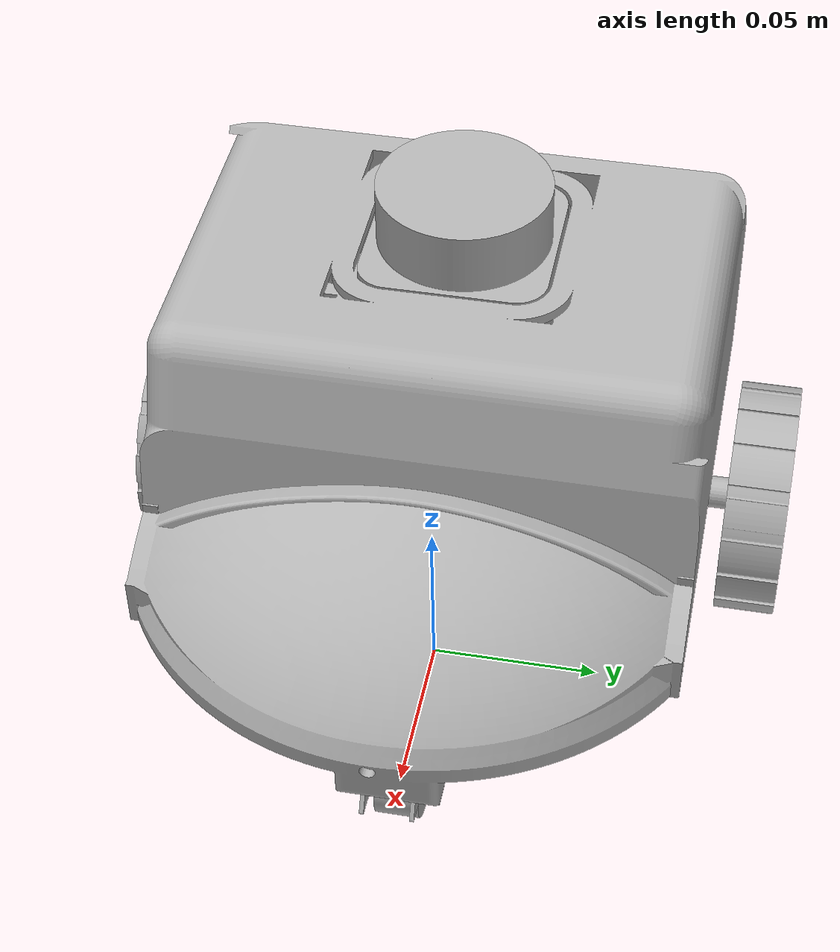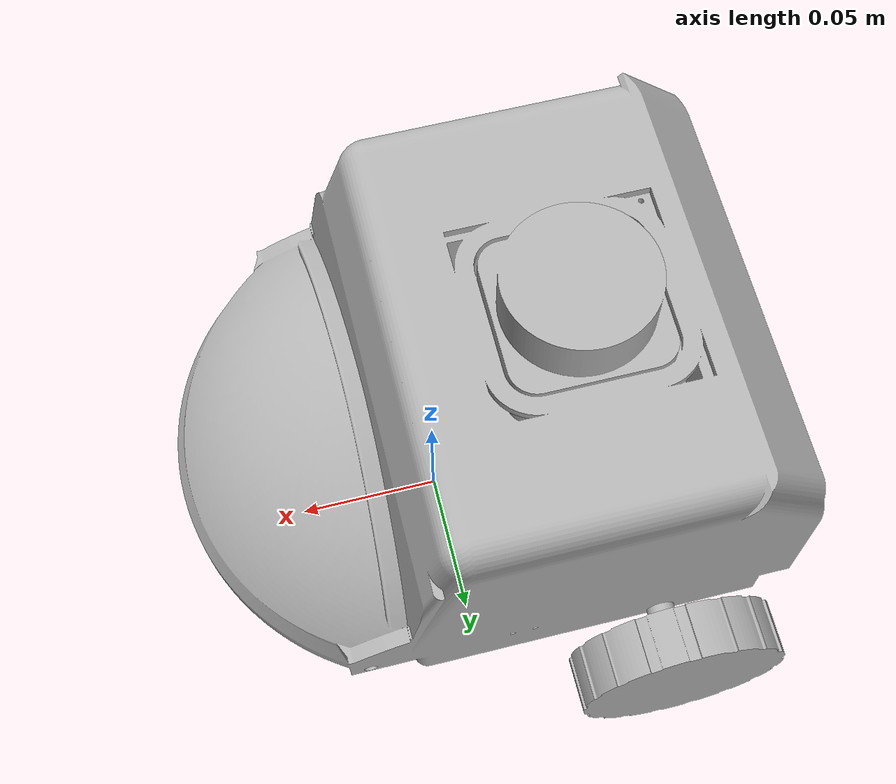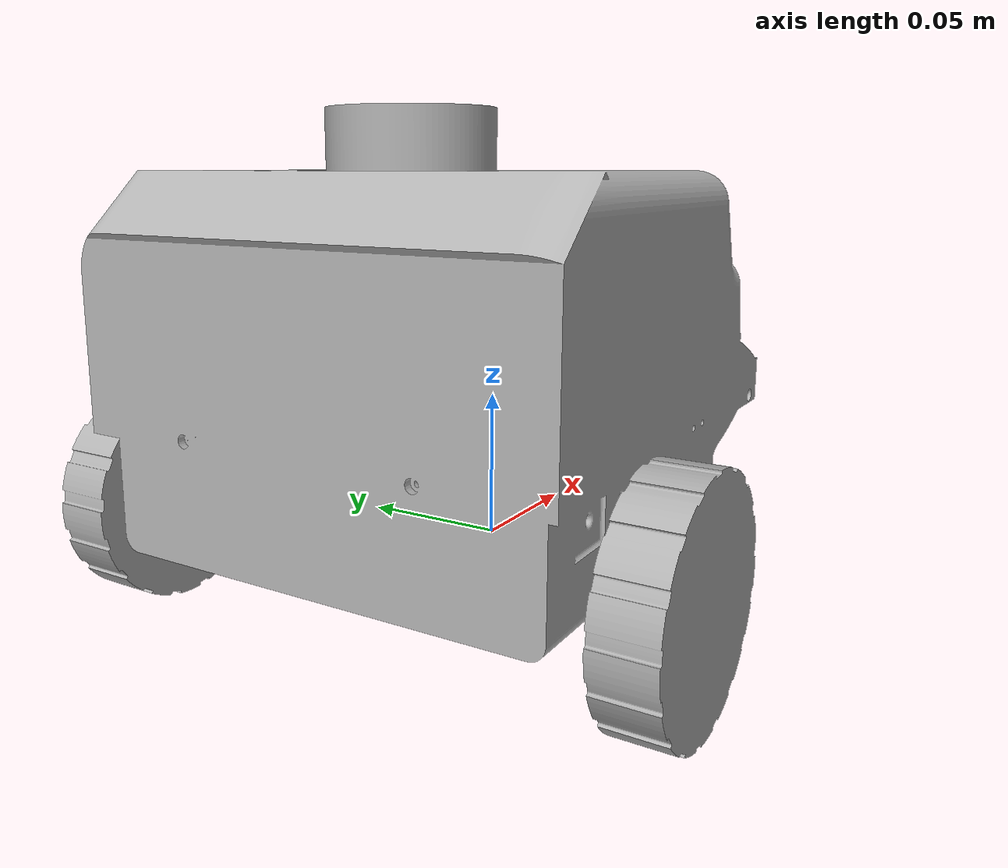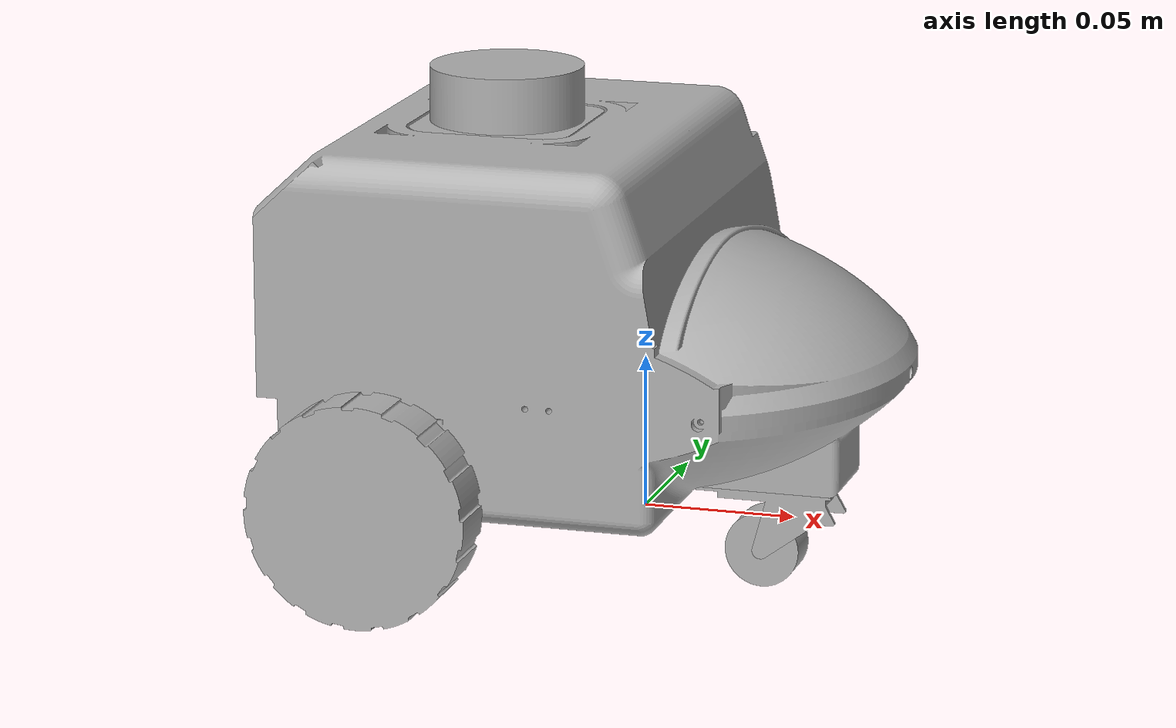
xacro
<?xml version="1.0" ?>
<robot name="relayrobot" xmlns:xacro="http://www.ros.org/wiki/xacro">

<xacro:include filename="$(find relayrobot_description)/urdf/materials.xacro" />
<xacro:include filename="$(find relayrobot_description)/urdf/relayrobot.trans" />
<xacro:include filename="$(find relayrobot_description)/urdf/relayrobot.gazebo" />

<link name="base_link">
  <inertial>
    <origin xyz="-0.02849873201115896 0.0010074794741378814 0.059470655413059396" rpy="0 0 0"/>
    <mass value="1.5"/>
    <inertia ixx="0.015961" iyy="0.020269" izz="0.023585" ixy="0.000105" iyz="-1.3e-05" ixz="0.00148"/>
  </inertial>
  <visual>
    <origin xyz="0 0 0" rpy="0 0 0"/>
    <geometry>
      <mesh filename="file://$(find relayrobot_description)/meshes/base_link.stl" scale="0.001 0.001 0.001"/>
    </geometry>
    <material name="silver"/>
  </visual>
  <collision>
    <origin xyz="0 0 0" rpy="0 0 0"/>
    <geometry>
      <mesh filename="file://$(find relayrobot_description)/meshes/base_link.stl" scale="0.001 0.001 0.001"/>
    </geometry>
  </collision>
</link>

<link name="left_wheel_v1_1">
  <inertial>
    <origin xyz="0.00010310967788917935 0.009300000000000141 0.00014263087704373054" rpy="0 0 0"/>
    <mass value="0.584454388782356"/>
    <inertia ixx="0.000203" iyy="0.000373" izz="0.000203" ixy="-0.0" iyz="0.0" ixz="-0.0"/>
  </inertial>
  <visual>
    <origin xyz="0.065 -0.0825 -0.019" rpy="0 0 0"/>
    <geometry>
      <mesh filename="file://$(find relayrobot_description)/meshes/left_wheel_v1_1.stl" scale="0.001 0.001 0.001"/>
    </geometry>
    <material name="silver"/>
  </visual>
  <collision>
    <origin xyz="0.065 -0.0825 -0.019" rpy="0 0 0"/>
    <geometry>
      <mesh filename="file://$(find relayrobot_description)/meshes/left_wheel_v1_1.stl" scale="0.001 0.001 0.001"/>
    </geometry>
  </collision>
</link>

<link name="right_wheel_v1_1">
  <inertial>
    <origin xyz="-9.685606761067334e-10 -0.00929999999999985 -1.4899380340605006e-11" rpy="0 0 0"/>
    <mass value="0.584454388782356"/>
    <inertia ixx="0.000203" iyy="0.000373" izz="0.000203" ixy="0.0" iyz="0.0" ixz="0.0"/>
  </inertial>
  <visual>
    <origin xyz="0.065 0.0825 -0.019" rpy="0 0 0"/>
    <geometry>
      <mesh filename="file://$(find relayrobot_description)/meshes/right_wheel_v1_1.stl" scale="0.001 0.001 0.001"/>
    </geometry>
    <material name="silver"/>
  </visual>
  <collision>
    <origin xyz="0.065 0.0825 -0.019" rpy="0 0 0"/>
    <geometry>
      <mesh filename="file://$(find relayrobot_description)/meshes/right_wheel_v1_1.stl" scale="0.001 0.001 0.001"/>
    </geometry>
  </collision>
</link>

<link name="lidar_v1_1">
  <inertial>
    <origin xyz="1.9380429697180013e-07 -0.001999947791913167 -0.0011862981259600225" rpy="0 0 0"/>
    <mass value="0.78745669696203"/>
    <inertia ixx="0.000267" iyy="0.000267" izz="0.000322" ixy="0.0" iyz="0.0" ixz="0.0"/>
  </inertial>
  <visual>
    <origin xyz="0.046963 -0.002846 -0.1223" rpy="0 0 0"/>
    <geometry>
      <mesh filename="file://$(find relayrobot_description)/meshes/lidar_v1_1.stl" scale="0.001 0.001 0.001"/>
    </geometry>
    <material name="silver"/>
  </visual>
  <collision>
    <origin xyz="0.046963 -0.002846 -0.1223" rpy="0 0 0"/>
    <geometry>
      <mesh filename="file://$(find relayrobot_description)/meshes/lidar_v1_1.stl" scale="0.001 0.001 0.001"/>
    </geometry>
  </collision>
</link>

<link name="caserwheel_support_v1_1">
  <inertial>
    <origin xyz="0.0017262529179650904 -0.00048363267287916754 -0.0038867505923491" rpy="0 0 0"/>
    <mass value="0.034814731241262914"/>
    <inertia ixx="2e-06" iyy="5e-06" izz="6e-06" ixy="0.0" iyz="-0.0" ixz="0.0"/>
  </inertial>
  <visual>
    <origin xyz="-0.04326 0.00025 -0.012308" rpy="0 0 0"/>
    <geometry>
      <mesh filename="file://$(find relayrobot_description)/meshes/caserwheel_support_v1_1.stl" scale="0.001 0.001 0.001"/>
    </geometry>
    <material name="silver"/>
  </visual>
  <collision>
    <origin xyz="-0.04326 0.00025 -0.012308" rpy="0 0 0"/>
    <geometry>
      <mesh filename="file://$(find relayrobot_description)/meshes/caserwheel_support_v1_1.stl" scale="0.001 0.001 0.001"/>
    </geometry>
  </collision>
</link>

<link name="casterwhhel_v1_1">
  <inertial>
    <origin xyz="-1.485649896576513e-07 0.006650262472581112 2.9931070903536916e-07" rpy="0 0 0"/>
    <mass value="0.048859797020980505"/>
    <inertia ixx="3e-06" iyy="4e-06" izz="3e-06" ixy="0.0" iyz="-0.0" ixz="0.0"/>
  </inertial>
  <visual>
    <origin xyz="-0.041063 0.007638 0.009569" rpy="0 0 0"/>
    <geometry>
      <mesh filename="file://$(find relayrobot_description)/meshes/casterwhhel_v1_1.stl" scale="0.001 0.001 0.001"/>
    </geometry>
    <material name="silver"/>
  </visual>
  <collision>
    <origin xyz="-0.041063 0.007638 0.009569" rpy="0 0 0"/>
    <geometry>
      <mesh filename="file://$(find relayrobot_description)/meshes/casterwhhel_v1_1.stl" scale="0.001 0.001 0.001"/>
    </geometry>
  </collision>
</link>

<joint name="left_wheel_joint" type="continuous">
  <origin xyz="-0.065 0.0825 0.019" rpy="0 0 0"/>
  <parent link="base_link"/>
  <child link="left_wheel_v1_1"/>
  <axis xyz="0.0 1.0 0.0"/>
  <limit effort="100.0" velocity="100.0"/>
</joint>

<joint name="right_wheel_joint" type="continuous">
  <origin xyz="-0.065 -0.0825 0.019" rpy="0 0 0"/>
  <parent link="base_link"/>
  <child link="right_wheel_v1_1"/>
  <axis xyz="0.0 1.0 0.0"/>			# 이거 진짜 중요함 이거땜에 하루 다날렸노,, left 축이랑 반대니까 안가고 계속 뺑뺑이 돌렸다는 문제가발생함.
  <limit effort="100.0" velocity="100.0"/>
</joint>

<joint name="Rigid 40" type="fixed">
  <origin xyz="-0.046963 0.002846 0.1223" rpy="0 0 0"/>
  <parent link="base_link"/>
  <child link="lidar_v1_1"/>
</joint>

<joint name="Rigid 41" type="fixed">
  <origin xyz="0.04326 -0.00025 0.012308" rpy="0 0 0"/>
  <parent link="base_link"/>
  <child link="caserwheel_support_v1_1"/>
</joint>

<joint name="Revolute 42" type="fixed">
  <origin xyz="-0.002197 -0.007388 -0.021877" rpy="0 0 0"/>
  <parent link="caserwheel_support_v1_1"/>
  <child link="casterwhhel_v1_1"/>
  <axis xyz="0.0 1.0 0.0"/>
</joint>

<gazebo>
    <plugin name='diff_drive' filename='libgazebo_ros_diff_drive.so'>
      <ros>
        <namespace>/</namespace>
        <remapping>cmd_vel:=cmd_vel</remapping>
        <remapping>odom:=odom</remapping>
      </ros>

      <left_joint>left_wheel_joint</left_joint>
      <right_joint>right_wheel_joint</right_joint>

      <wheel_separation>0.165</wheel_separation>

      <wheel_diameter>0.1</wheel_diameter>

      <max_wheel_torque>2000</max_wheel_torque>
      <max_wheel_acceleration>5.0</max_wheel_acceleration>

      <publish_odom>true</publish_odom>
      <publish_odom_tf>true</publish_odom_tf>
      <publish_wheel_tf>true</publish_wheel_tf>

      <odometry_frame>odom</odometry_frame>
      <robot_base_frame>base_link</robot_base_frame>
    </plugin>
  </gazebo>

</robot>

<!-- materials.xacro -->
<robot name="relayrobot" xmlns:xacro="http://www.ros.org/wiki/xacro" >

<material name="silver">
  <color rgba="0.700 0.700 0.700 1.000"/>
</material>

</robot>

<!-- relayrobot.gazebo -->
<robot name="relayrobot" xmlns:xacro="http://www.ros.org/wiki/xacro" >

<xacro:property name="body_color" value="Gazebo/Silver" />

<gazebo>
  <plugin name="joint_state_publisher" filename="libgazebo_ros_joint_state_publisher.so">
    <ros>
      <remapping>~/out:=joint_states</remapping>
    </ros>
    <update_rate>30</update_rate>
    <joint_name>left_wheel_joint</joint_name>
    <joint_name>right_wheel_joint</joint_name>
  </plugin>
</gazebo>

<gazebo reference="base_link">
  <material>${body_color}</material>
  <mu1>0.2</mu1>
  <mu2>0.2</mu2>
  <self_collide>false</self_collide>
  <gravity>true</gravity>
</gazebo>

<gazebo reference="left_wheel_v1_1">
  <material>${body_color}</material>
  <mu1>0.2</mu1>
  <mu2>0.20</mu2>
  <self_collide>false</self_collide>
</gazebo>

<gazebo reference="right_wheel_v1_1">
  <material>${body_color}</material>
  <mu1>0.20</mu1>
  <mu2>0.20</mu2>
  <self_collide>false</self_collide>
</gazebo>

<gazebo reference="lidar_v1_1">
  <material>${body_color}</material>
  <mu1>0.2</mu1>
  <mu2>0.2</mu2>
  <self_collide>false</self_collide>
</gazebo>

<gazebo reference="lidar_v1_1">
  <material>${body_color}</material>
  <mu1>0.2</mu1>
  <mu2>0.2</mu2>
  <self_collide>false</self_collide>

  <sensor name="lidar" type="ray">
    <pose> 0 0 0 0 0 0 </pose>
    <always_on>true</always_on>
    <visualize>true</visualize> <update_rate>10</update_rate> <ray>
      <scan>
        <horizontal>
          <samples>360</samples> <resolution>1</resolution>
          <min_angle>-3.14159</min_angle>
          <max_angle>3.14159</max_angle>
        </horizontal>
      </scan>
      <range>
        <min>0.12</min> <max>10.0</max> <resolution>0.015</resolution>
      </range>
      <noise>
        <type>gaussian</type>
        <mean>0.0</mean>
        <stddev>0.01</stddev>
      </noise>
    </ray>

    <plugin name="laser_controller" filename="libgazebo_ros_ray_sensor.so">
      <ros>
        <remapping>~/out:=scan</remapping> </ros>
      <output_type>sensor_msgs/LaserScan</output_type>
      <frame_name>lidar_v1_1</frame_name> </plugin>
  </sensor>
  </gazebo>

<gazebo reference="casterwhhel_v1_1">
  <material>${body_color}</material>
  <mu1>0.001</mu1>
  <mu2>0.001</mu2>
  <self_collide>false</self_collide>
</gazebo>

</robot>
